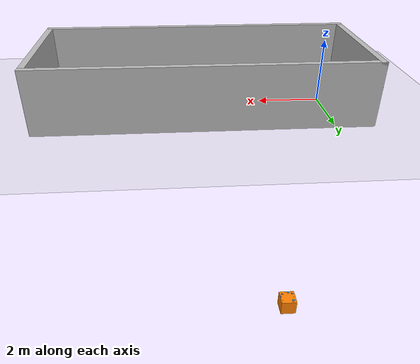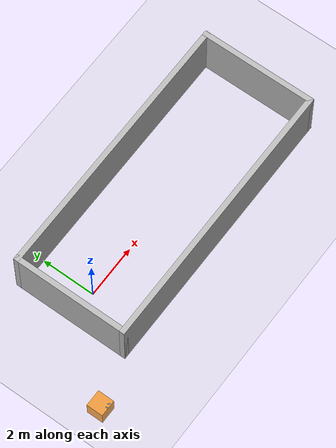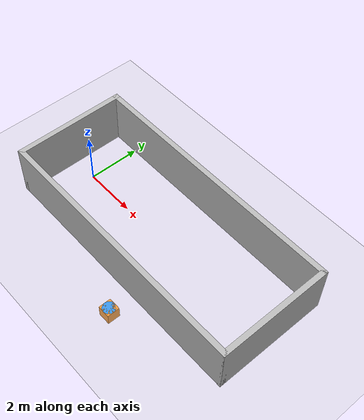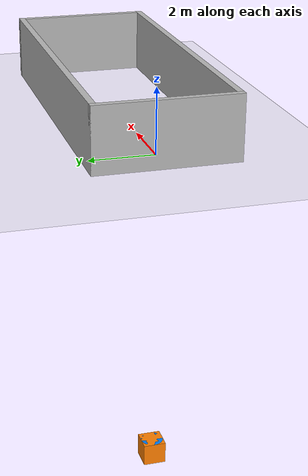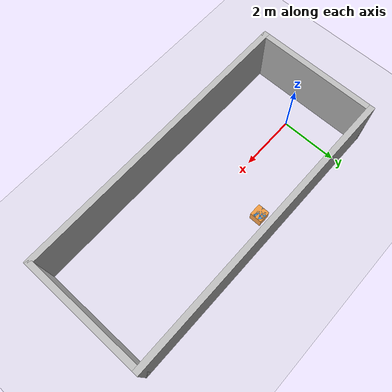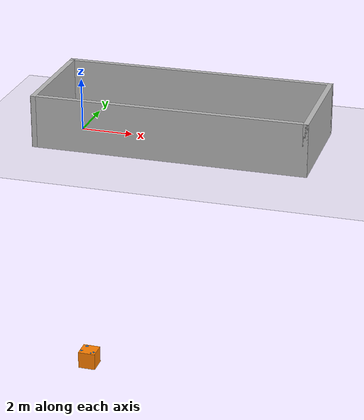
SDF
<sdf version="1.9">
 <world name="test_small_static015">
  <physics name="1ms" type="ignored">
   <max_step_size>0.001</max_step_size>
   <real_time_factor>1</real_time_factor>
   <real_time_update_rate>1000</real_time_update_rate>
  </physics>
  <plugin name="ignition::gazebo::systems::Physics" filename="ignition-gazebo-physics-system"/>
  <plugin name="ignition::gazebo::systems::UserCommands" filename="ignition-gazebo-user-commands-system"/>
  <plugin name="ignition::gazebo::systems::SceneBroadcaster" filename="ignition-gazebo-scene-broadcaster-system"/>
  <plugin name="ignition::gazebo::systems::Contact" filename="ignition-gazebo-contact-system"/>
  <light name="sun" type="directional">
   <pose>0 0 10 0 0 0</pose>
   <intensity>1.2</intensity>
   <direction>-0.5 0.1 -0.9</direction>
   <diffuse>1 1 1 1</diffuse>
   <specular>0.2 0.2 0.2 1</specular>
  </light>
  <model name="ground_plane">
   <static>true</static>
   <link name="link">
    <collision name="collision">
     <geometry><plane><normal>0 0 1</normal><size>100 100</size></plane></geometry>
    </collision>
    <visual name="visual">
     <geometry><plane><normal>0 0 1</normal><size>100 100</size></plane></geometry>
     <material><ambient>0.8 0.8 0.8 1</ambient><diffuse>0.8 0.8 0.8 1</diffuse></material>
    </visual>
   </link>
  </model>
  <model name="corridor_border">
   <static>true</static>
   <link name="north">
    <pose>4.0 2.1 1 0 0 0</pose>
    <collision name="c"><geometry><box><size>10.4 0.2 2</size></box></geometry></collision>
    <visual name="v"><geometry><box><size>10.4 0.2 2</size></box></geometry></visual>
   </link>
   <link name="south">
    <pose>4.0 -2.1 1 0 0 0</pose>
    <collision name="c"><geometry><box><size>10.4 0.2 2</size></box></geometry></collision>
    <visual name="v"><geometry><box><size>10.4 0.2 2</size></box></geometry></visual>
   </link>
   <link name="west">
    <pose>-1.1 0 1 0 0 0</pose>
    <collision name="c"><geometry><box><size>0.2 4.4 2</size></box></geometry></collision>
    <visual name="v"><geometry><box><size>0.2 4.4 2</size></box></geometry></visual>
   </link>
   <link name="east">
    <pose>9.1 0 1 0 0 0</pose>
    <collision name="c"><geometry><box><size>0.2 4.4 2</size></box></geometry></collision>
    <visual name="v"><geometry><box><size>0.2 4.4 2</size></box></geometry></visual>
   </link>
  </model>
  <model name="static_box_0">
   <pose>0 0 -10.00 0 0 0</pose>
   <static>true</static>
   <link name="link">
    <visual name="vis">
     <geometry><box><size>0.7 0.7 0.7</size></box></geometry>
     <material><ambient>1 0.5 0 1</ambient><diffuse>1 0.5 0 1</diffuse></material>
    </visual>
    <collision name="col"><geometry><box><size>0.7 0.7 0.7</size></box></geometry></collision>
   </link>
  </model>
  <model name="static_box_1">
   <pose>0 0 -10.00 0 0 0</pose>
   <static>true</static>
   <link name="link">
    <visual name="vis">
     <geometry><box><size>0.7 0.7 0.7</size></box></geometry>
     <material><ambient>1 0.5 0 1</ambient><diffuse>1 0.5 0 1</diffuse></material>
    </visual>
    <collision name="col"><geometry><box><size>0.7 0.7 0.7</size></box></geometry></collision>
   </link>
  </model>
  <model name="static_box_2">
   <pose>0 0 -10.00 0 0 0</pose>
   <static>true</static>
   <link name="link">
    <visual name="vis">
     <geometry><box><size>0.7 0.7 0.7</size></box></geometry>
     <material><ambient>1 0.5 0 1</ambient><diffuse>1 0.5 0 1</diffuse></material>
    </visual>
    <collision name="col"><geometry><box><size>0.7 0.7 0.7</size></box></geometry></collision>
   </link>
  </model>
  <model name="static_box_3">
   <pose>0 0 -10.00 0 0 0</pose>
   <static>true</static>
   <link name="link">
    <visual name="vis">
     <geometry><box><size>0.7 0.7 0.7</size></box></geometry>
     <material><ambient>1 0.5 0 1</ambient><diffuse>1 0.5 0 1</diffuse></material>
    </visual>
    <collision name="col"><geometry><box><size>0.7 0.7 0.7</size></box></geometry></collision>
   </link>
  </model>
  <model name="static_box_4">
   <pose>0 0 -10.00 0 0 0</pose>
   <static>true</static>
   <link name="link">
    <visual name="vis">
     <geometry><box><size>0.7 0.7 0.7</size></box></geometry>
     <material><ambient>1 0.5 0 1</ambient><diffuse>1 0.5 0 1</diffuse></material>
    </visual>
    <collision name="col"><geometry><box><size>0.7 0.7 0.7</size></box></geometry></collision>
   </link>
  </model>
  <model name="static_box_5">
   <pose>0 0 -10.00 0 0 0</pose>
   <static>true</static>
   <link name="link">
    <visual name="vis">
     <geometry><box><size>0.7 0.7 0.7</size></box></geometry>
     <material><ambient>1 0.5 0 1</ambient><diffuse>1 0.5 0 1</diffuse></material>
    </visual>
    <collision name="col"><geometry><box><size>0.7 0.7 0.7</size></box></geometry></collision>
   </link>
  </model>
  <model name="static_box_6">
   <pose>0 0 -10.00 0 0 0</pose>
   <static>true</static>
   <link name="link">
    <visual name="vis">
     <geometry><box><size>0.7 0.7 0.7</size></box></geometry>
     <material><ambient>1 0.5 0 1</ambient><diffuse>1 0.5 0 1</diffuse></material>
    </visual>
    <collision name="col"><geometry><box><size>0.7 0.7 0.7</size></box></geometry></collision>
   </link>
  </model>
  <model name="static_box_7">
   <pose>0 0 -10.00 0 0 0</pose>
   <static>true</static>
   <link name="link">
    <visual name="vis">
     <geometry><box><size>0.7 0.7 0.7</size></box></geometry>
     <material><ambient>1 0.5 0 1</ambient><diffuse>1 0.5 0 1</diffuse></material>
    </visual>
    <collision name="col"><geometry><box><size>0.7 0.7 0.7</size></box></geometry></collision>
   </link>
  </model>
  <model name="static_box_8">
   <pose>0 0 -10.00 0 0 0</pose>
   <static>true</static>
   <link name="link">
    <visual name="vis">
     <geometry><box><size>0.7 0.7 0.7</size></box></geometry>
     <material><ambient>1 0.5 0 1</ambient><diffuse>1 0.5 0 1</diffuse></material>
    </visual>
    <collision name="col"><geometry><box><size>0.7 0.7 0.7</size></box></geometry></collision>
   </link>
  </model>
  <model name="static_box_9">
   <pose>0 0 -10.00 0 0 0</pose>
   <static>true</static>
   <link name="link">
    <visual name="vis">
     <geometry><box><size>0.7 0.7 0.7</size></box></geometry>
     <material><ambient>1 0.5 0 1</ambient><diffuse>1 0.5 0 1</diffuse></material>
    </visual>
    <collision name="col"><geometry><box><size>0.7 0.7 0.7</size></box></geometry></collision>
   </link>
  </model>
  <model name="static_cyl_0">
   <pose>0 0 -10.00 0 0 0</pose>
   <static>true</static>
   <link name="link">
    <visual name="vis">
     <geometry><cylinder><radius>0.35</radius><length>0.7</length></cylinder></geometry>
     <material><ambient>0 0.5 1 1</ambient><diffuse>0 0.5 1 1</diffuse></material>
    </visual>
    <collision name="col">
     <geometry><cylinder><radius>0.35</radius><length>0.7</length></cylinder></geometry>
    </collision>
   </link>
  </model>
  <model name="static_cyl_1">
   <pose>0 0 -10.00 0 0 0</pose>
   <static>true</static>
   <link name="link">
    <visual name="vis">
     <geometry><cylinder><radius>0.35</radius><length>0.7</length></cylinder></geometry>
     <material><ambient>0 0.5 1 1</ambient><diffuse>0 0.5 1 1</diffuse></material>
    </visual>
    <collision name="col">
     <geometry><cylinder><radius>0.35</radius><length>0.7</length></cylinder></geometry>
    </collision>
   </link>
  </model>
  <model name="static_cyl_2">
   <pose>0 0 -10.00 0 0 0</pose>
   <static>true</static>
   <link name="link">
    <visual name="vis">
     <geometry><cylinder><radius>0.35</radius><length>0.7</length></cylinder></geometry>
     <material><ambient>0 0.5 1 1</ambient><diffuse>0 0.5 1 1</diffuse></material>
    </visual>
    <collision name="col">
     <geometry><cylinder><radius>0.35</radius><length>0.7</length></cylinder></geometry>
    </collision>
   </link>
  </model>
  <model name="static_cyl_3">
   <pose>0 0 -10.00 0 0 0</pose>
   <static>true</static>
   <link name="link">
    <visual name="vis">
     <geometry><cylinder><radius>0.35</radius><length>0.7</length></cylinder></geometry>
     <material><ambient>0 0.5 1 1</ambient><diffuse>0 0.5 1 1</diffuse></material>
    </visual>
    <collision name="col">
     <geometry><cylinder><radius>0.35</radius><length>0.7</length></cylinder></geometry>
    </collision>
   </link>
  </model>
  <model name="static_cyl_4">
   <pose>0 0 -10.00 0 0 0</pose>
   <static>true</static>
   <link name="link">
    <visual name="vis">
     <geometry><cylinder><radius>0.35</radius><length>0.7</length></cylinder></geometry>
     <material><ambient>0 0.5 1 1</ambient><diffuse>0 0.5 1 1</diffuse></material>
    </visual>
    <collision name="col">
     <geometry><cylinder><radius>0.35</radius><length>0.7</length></cylinder></geometry>
    </collision>
   </link>
  </model>
  <model name="static_cyl_5">
   <pose>0 0 -10.00 0 0 0</pose>
   <static>true</static>
   <link name="link">
    <visual name="vis">
     <geometry><cylinder><radius>0.35</radius><length>0.7</length></cylinder></geometry>
     <material><ambient>0 0.5 1 1</ambient><diffuse>0 0.5 1 1</diffuse></material>
    </visual>
    <collision name="col">
     <geometry><cylinder><radius>0.35</radius><length>0.7</length></cylinder></geometry>
    </collision>
   </link>
  </model>
  <model name="static_cyl_6">
   <pose>0 0 -10.00 0 0 0</pose>
   <static>true</static>
   <link name="link">
    <visual name="vis">
     <geometry><cylinder><radius>0.35</radius><length>0.7</length></cylinder></geometry>
     <material><ambient>0 0.5 1 1</ambient><diffuse>0 0.5 1 1</diffuse></material>
    </visual>
    <collision name="col">
     <geometry><cylinder><radius>0.35</radius><length>0.7</length></cylinder></geometry>
    </collision>
   </link>
  </model>
  <model name="static_cyl_7">
   <pose>0 0 -10.00 0 0 0</pose>
   <static>true</static>
   <link name="link">
    <visual name="vis">
     <geometry><cylinder><radius>0.35</radius><length>0.7</length></cylinder></geometry>
     <material><ambient>0 0.5 1 1</ambient><diffuse>0 0.5 1 1</diffuse></material>
    </visual>
    <collision name="col">
     <geometry><cylinder><radius>0.35</radius><length>0.7</length></cylinder></geometry>
    </collision>
   </link>
  </model>
  <model name="static_cyl_8">
   <pose>0 0 -10.00 0 0 0</pose>
   <static>true</static>
   <link name="link">
    <visual name="vis">
     <geometry><cylinder><radius>0.35</radius><length>0.7</length></cylinder></geometry>
     <material><ambient>0 0.5 1 1</ambient><diffuse>0 0.5 1 1</diffuse></material>
    </visual>
    <collision name="col">
     <geometry><cylinder><radius>0.35</radius><length>0.7</length></cylinder></geometry>
    </collision>
   </link>
  </model>
  <model name="static_cyl_9">
   <pose>0 0 -10.00 0 0 0</pose>
   <static>true</static>
   <link name="link">
    <visual name="vis">
     <geometry><cylinder><radius>0.35</radius><length>0.7</length></cylinder></geometry>
     <material><ambient>0 0.5 1 1</ambient><diffuse>0 0.5 1 1</diffuse></material>
    </visual>
    <collision name="col">
     <geometry><cylinder><radius>0.35</radius><length>0.7</length></cylinder></geometry>
    </collision>
   </link>
  </model>
 </world>
</sdf>
